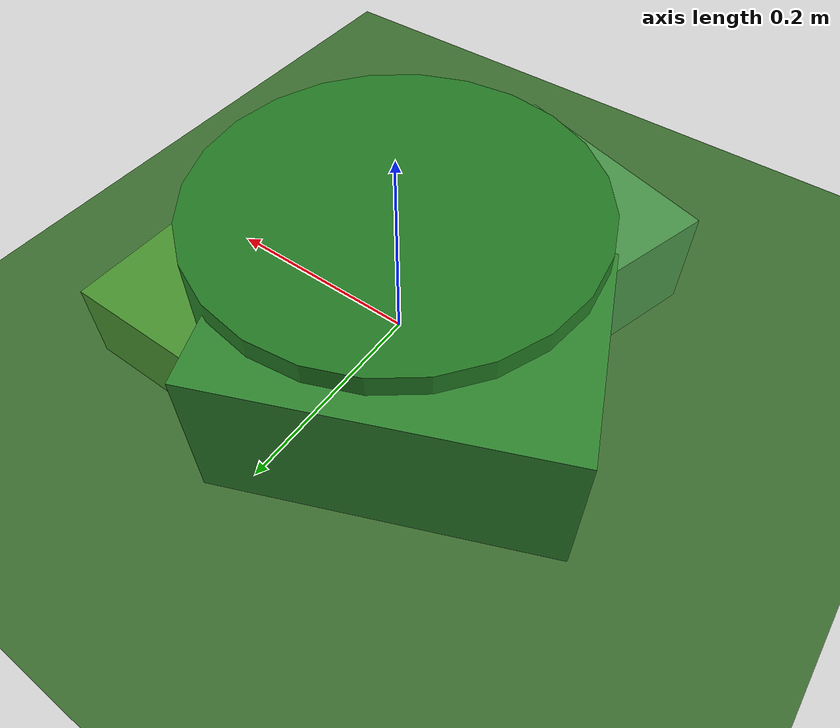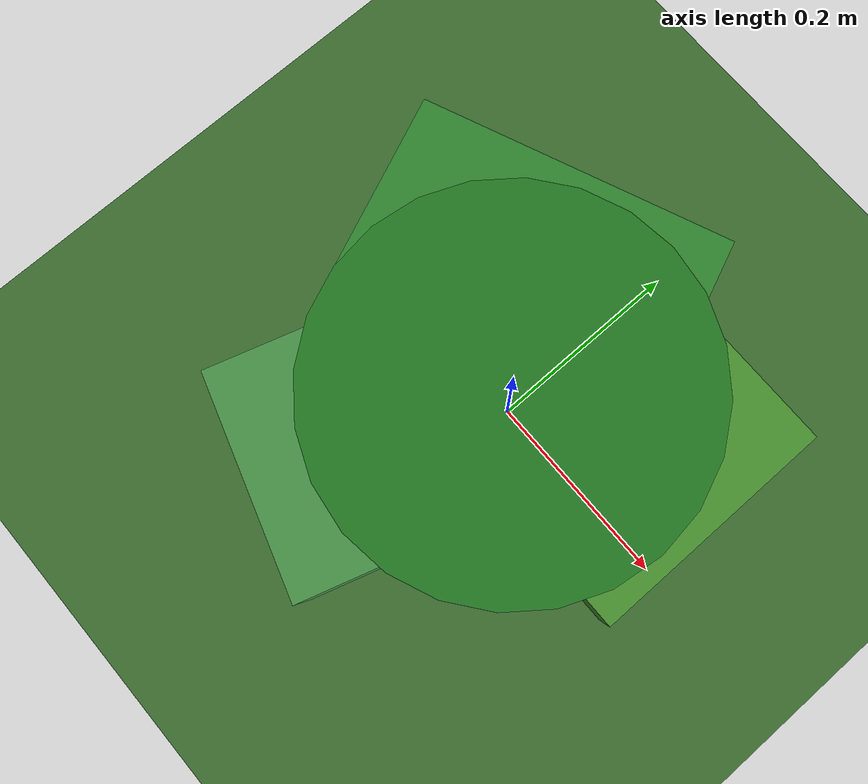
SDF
<sdf version="1.8">
    <!-- High-frequency irregular surface with elevation variance (+-0.08m), modeling soft foliage/vegetation that induces acoustic-optical discrepancies (Dd < -0.05m), labeled UNSAFE -->
    <world name="testbed_gamma">
        <physics name="1ms" type="ignored">
        <max_step_size>0.001</max_step_size>
        <real_time_factor>1.0</real_time_factor>
        </physics>

        <light type="directional" name="sun">
        <cast_shadows>true</cast_shadows>
        <pose>0 0 15 0 0 0</pose>
        <diffuse>0.9 0.9 0.9 1</diffuse>
        <specular>0.2 0.2 0.2 1</specular>
        <direction>-0.5 0.1 -0.9</direction>
        </light>

        <model name="ground_plane">
        <static>true</static>
        <link name="link">
            <collision name="collision">
            <geometry>
                <plane>
                <normal>0 0 1</normal>
                <size>100 100</size>
                </plane>
            </geometry>
            </collision>
            <visual name="visual">
            <geometry>
                <plane>
                <normal>0 0 1</normal>
                <size>100 100</size>
                </plane>
            </geometry>
            <material>
                <ambient>0.2 0.35 0.15 1</ambient>
                <diffuse>0.25 0.45 0.2 1</diffuse>
            </material>
            </visual>
        </link>
        </model>

        <!-- Mound 1 (Fore-Right) -->
        <model name="vegetation_mound_1">
        <static>true</static>
        <pose>0.08 0.06 0.04 0 0 0</pose>
        <link name="mound1_link">
            <collision name="collision">
            <geometry><box><size>0.25 0.25 0.08</size></box></geometry>
            </collision>
            <visual name="visual">
            <geometry><box><size>0.25 0.25 0.08</size></box></geometry>
            <material><ambient>0.2 0.5 0.2 1</ambient><diffuse>0.3 0.6 0.2 1</diffuse></material>
            </visual>
        </link>
        </model>

        <!-- Mound 2 (Aft-Left) -->
        <model name="vegetation_mound_2">
        <static>true</static>
        <pose>-0.07 0.08 0.07 0 0 0.4</pose>
        <link name="mound2_link">
            <collision name="collision">
            <geometry><box><size>0.3 0.2 0.14</size></box></geometry>
            </collision>
            <visual name="visual">
            <geometry><box><size>0.3 0.2 0.14</size></box></geometry>
            <material><ambient>0.15 0.45 0.15 1</ambient><diffuse>0.2 0.55 0.2 1</diffuse></material>
            </visual>
        </link>
        </model>

        <!-- Mound 3 (Aft-Right) -->
        <model name="vegetation_mound_3">
        <static>true</static>
        <pose>-0.05 -0.09 0.05 0 0 -0.3</pose>
        <link name="mound3_link">
            <collision name="collision">
            <geometry><box><size>0.22 0.28 0.10</size></box></geometry>
            </collision>
            <visual name="visual">
            <geometry><box><size>0.22 0.28 0.10</size></box></geometry>
            <material><ambient>0.25 0.5 0.25 1</ambient><diffuse>0.3 0.6 0.3 1</diffuse></material>
            </visual>
        </link>
        </model>

        <!-- Central Canopy -->
        <model name="central_canopy">
        <static>true</static>
        <pose>0.0 0.0 0.08 0 0 0</pose>
        <link name="canopy_link">
            <collision name="collision">
            <geometry><cylinder><radius>0.18</radius><length>0.16</length></cylinder></geometry>
            </collision>
            <visual name="visual">
            <geometry><cylinder><radius>0.18</radius><length>0.16</length></cylinder></geometry>
            <material><ambient>0.1 0.4 0.1 1</ambient><diffuse>0.15 0.5 0.15 1</diffuse></material>
            </visual>
        </link>
        </model>
    </world>
</sdf>
